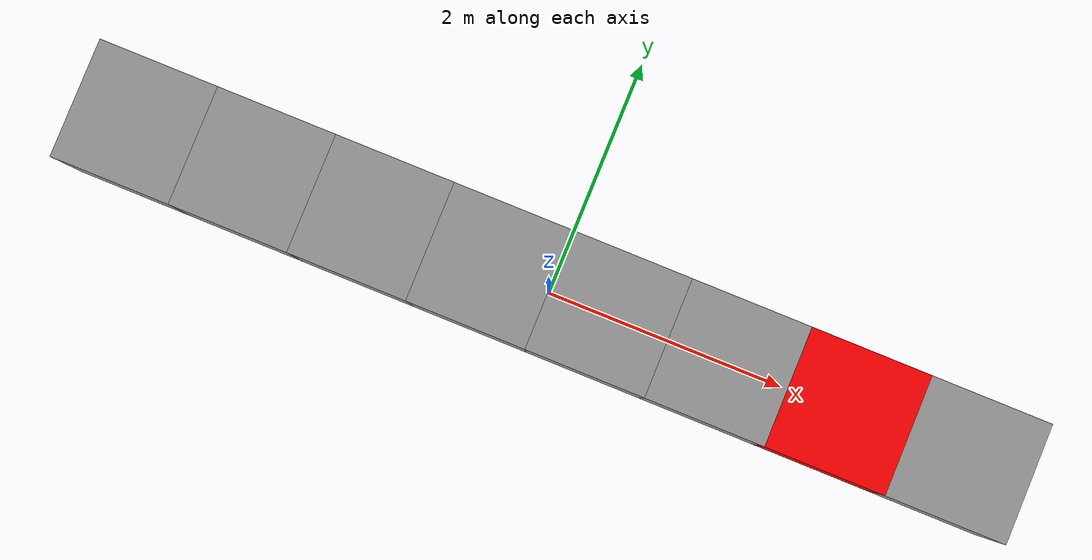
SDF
<?xml version='1.0'?>
<sdf version='1.6'>
  <model name='seiral_blocks_color'>
    <link name='link_10'>
      <pose frame=''>2.5 0 0 0 -0 0</pose>
      <inertial>
        <mass>1</mass>
        <inertia>
          <ixx>0.166667</ixx>
          <ixy>0</ixy>
          <ixz>0</ixz>
          <iyy>0.166667</iyy>
          <iyz>0</iyz>
          <izz>0.166667</izz>
        </inertia>
        <pose frame=''>0 0 0 0 -0 0</pose>
      </inertial>
      <gravity>1</gravity>
      <self_collide>0</self_collide>
      <kinematic>0</kinematic>
      <visual name='visual'>
        <pose frame=''>0 0 0 0 -0 0</pose>
        <geometry>
          <box>
            <size>1 1 1</size>
          </box>
        </geometry>
        <material>
          <lighting>1</lighting>
          <script>
            <uri>file://media/materials/scripts/gazebo.material</uri>
            <name>Gazebo/Grey</name>
          </script>
          <shader type='pixel'>
            <normal_map>__default__</normal_map>
          </shader>
          <ambient>1.0 0.0 0.0 1</ambient>
          <diffuse>1.0 0.0 0.0 1</diffuse>
          <specular>0.1 0.1 0.1 1</specular>
          <emissive>0 0 0 1</emissive>
        </material>
        <transparency>0</transparency>
        <cast_shadows>1</cast_shadows>
      </visual>
      <collision name='collision'>
        <laser_retro>0</laser_retro>
        <max_contacts>10</max_contacts>
        <pose frame=''>0 0 0 0 -0 0</pose>
        <geometry>
          <box>
            <size>1 1 1</size>
          </box>
        </geometry>
        <surface>
          <friction>
            <ode>
              <mu>1</mu>
              <mu2>1</mu2>
              <fdir1>0 0 0</fdir1>
              <slip1>0</slip1>
              <slip2>0</slip2>
            </ode>
            <torsional>
              <coefficient>1</coefficient>
              <patch_radius>0</patch_radius>
              <surface_radius>0</surface_radius>
              <use_patch_radius>1</use_patch_radius>
              <ode>
                <slip>0</slip>
              </ode>
            </torsional>
          </friction>
          <bounce>
            <restitution_coefficient>0</restitution_coefficient>
            <threshold>1e+06</threshold>
          </bounce>
          <contact>
            <collide_without_contact>0</collide_without_contact>
            <collide_without_contact_bitmask>1</collide_without_contact_bitmask>
            <collide_bitmask>1</collide_bitmask>
            <ode>
              <soft_cfm>0</soft_cfm>
              <soft_erp>0.2</soft_erp>
              <kp>1e+13</kp>
              <kd>1</kd>
              <max_vel>0.01</max_vel>
              <min_depth>0</min_depth>
            </ode>
            <bullet>
              <split_impulse>1</split_impulse>
              <split_impulse_penetration_threshold>-0.01</split_impulse_penetration_threshold>
              <soft_cfm>0</soft_cfm>
              <soft_erp>0.2</soft_erp>
              <kp>1e+13</kp>
              <kd>1</kd>
            </bullet>
          </contact>
        </surface>
      </collision>
    </link>
    <link name='link_11'>
      <pose frame=''>3.5 0 0 0 -0 0</pose>
      <inertial>
        <mass>1</mass>
        <inertia>
          <ixx>0.166667</ixx>
          <ixy>0</ixy>
          <ixz>0</ixz>
          <iyy>0.166667</iyy>
          <iyz>0</iyz>
          <izz>0.166667</izz>
        </inertia>
        <pose frame=''>0 0 0 0 -0 0</pose>
      </inertial>
      <gravity>1</gravity>
      <self_collide>0</self_collide>
      <kinematic>0</kinematic>
      <visual name='visual'>
        <pose frame=''>0 0 0 0 -0 0</pose>
        <geometry>
          <box>
            <size>1 1 1</size>
          </box>
        </geometry>
        <material>
          <lighting>1</lighting>
          <script>
            <uri>file://media/materials/scripts/gazebo.material</uri>
            <name>Gazebo/Grey</name>
          </script>
          <shader type='pixel'>
            <normal_map>__default__</normal_map>
          </shader>
          <ambient>0.3 0.3 0.3 1</ambient>
          <diffuse>0.7 0.7 0.7 1</diffuse>
          <specular>0.01 0.01 0.01 1</specular>
          <emissive>0 0 0 1</emissive>
        </material>
        <transparency>0</transparency>
        <cast_shadows>1</cast_shadows>
      </visual>
      <collision name='collision'>
        <laser_retro>0</laser_retro>
        <max_contacts>10</max_contacts>
        <pose frame=''>0 0 0 0 -0 0</pose>
        <geometry>
          <box>
            <size>1 1 1</size>
          </box>
        </geometry>
        <surface>
          <friction>
            <ode>
              <mu>1</mu>
              <mu2>1</mu2>
              <fdir1>0 0 0</fdir1>
              <slip1>0</slip1>
              <slip2>0</slip2>
            </ode>
            <torsional>
              <coefficient>1</coefficient>
              <patch_radius>0</patch_radius>
              <surface_radius>0</surface_radius>
              <use_patch_radius>1</use_patch_radius>
              <ode>
                <slip>0</slip>
              </ode>
            </torsional>
          </friction>
          <bounce>
            <restitution_coefficient>0</restitution_coefficient>
            <threshold>1e+06</threshold>
          </bounce>
          <contact>
            <collide_without_contact>0</collide_without_contact>
            <collide_without_contact_bitmask>1</collide_without_contact_bitmask>
            <collide_bitmask>1</collide_bitmask>
            <ode>
              <soft_cfm>0</soft_cfm>
              <soft_erp>0.2</soft_erp>
              <kp>1e+13</kp>
              <kd>1</kd>
              <max_vel>0.01</max_vel>
              <min_depth>0</min_depth>
            </ode>
            <bullet>
              <split_impulse>1</split_impulse>
              <split_impulse_penetration_threshold>-0.01</split_impulse_penetration_threshold>
              <soft_cfm>0</soft_cfm>
              <soft_erp>0.2</soft_erp>
              <kp>1e+13</kp>
              <kd>1</kd>
            </bullet>
          </contact>
        </surface>
      </collision>
    </link>
    <link name='link_15'>
      <pose frame=''>-2.5 0 0 0 -0 0</pose>
      <inertial>
        <mass>1</mass>
        <inertia>
          <ixx>0.166667</ixx>
          <ixy>0</ixy>
          <ixz>0</ixz>
          <iyy>0.166667</iyy>
          <iyz>0</iyz>
          <izz>0.166667</izz>
        </inertia>
        <pose frame=''>0 0 0 0 -0 0</pose>
      </inertial>
      <gravity>1</gravity>
      <self_collide>0</self_collide>
      <kinematic>0</kinematic>
      <visual name='visual'>
        <pose frame=''>0 0 0 0 -0 0</pose>
        <geometry>
          <box>
            <size>1 1 1</size>
          </box>
        </geometry>
        <material>
          <lighting>1</lighting>
          <script>
            <uri>file://media/materials/scripts/gazebo.material</uri>
            <name>Gazebo/Grey</name>
          </script>
          <shader type='pixel'>
            <normal_map>__default__</normal_map>
          </shader>
          <ambient>0.3 0.3 0.3 1</ambient>
          <diffuse>0.7 0.7 0.7 1</diffuse>
          <specular>0.01 0.01 0.01 1</specular>
          <emissive>0 0 0 1</emissive>
        </material>
        <transparency>0</transparency>
        <cast_shadows>1</cast_shadows>
      </visual>
      <collision name='collision'>
        <laser_retro>0</laser_retro>
        <max_contacts>10</max_contacts>
        <pose frame=''>0 0 0 0 -0 0</pose>
        <geometry>
          <box>
            <size>1 1 1</size>
          </box>
        </geometry>
        <surface>
          <friction>
            <ode>
              <mu>1</mu>
              <mu2>1</mu2>
              <fdir1>0 0 0</fdir1>
              <slip1>0</slip1>
              <slip2>0</slip2>
            </ode>
            <torsional>
              <coefficient>1</coefficient>
              <patch_radius>0</patch_radius>
              <surface_radius>0</surface_radius>
              <use_patch_radius>1</use_patch_radius>
              <ode>
                <slip>0</slip>
              </ode>
            </torsional>
          </friction>
          <bounce>
            <restitution_coefficient>0</restitution_coefficient>
            <threshold>1e+06</threshold>
          </bounce>
          <contact>
            <collide_without_contact>0</collide_without_contact>
            <collide_without_contact_bitmask>1</collide_without_contact_bitmask>
            <collide_bitmask>1</collide_bitmask>
            <ode>
              <soft_cfm>0</soft_cfm>
              <soft_erp>0.2</soft_erp>
              <kp>1e+13</kp>
              <kd>1</kd>
              <max_vel>0.01</max_vel>
              <min_depth>0</min_depth>
            </ode>
            <bullet>
              <split_impulse>1</split_impulse>
              <split_impulse_penetration_threshold>-0.01</split_impulse_penetration_threshold>
              <soft_cfm>0</soft_cfm>
              <soft_erp>0.2</soft_erp>
              <kp>1e+13</kp>
              <kd>1</kd>
            </bullet>
          </contact>
        </surface>
      </collision>
    </link>
    <link name='link_16'>
      <pose frame=''>-0.5 0 0 0 -0 0</pose>
      <inertial>
        <mass>1</mass>
        <inertia>
          <ixx>0.166667</ixx>
          <ixy>0</ixy>
          <ixz>0</ixz>
          <iyy>0.166667</iyy>
          <iyz>0</iyz>
          <izz>0.166667</izz>
        </inertia>
        <pose frame=''>0 0 0 0 -0 0</pose>
      </inertial>
      <gravity>1</gravity>
      <self_collide>0</self_collide>
      <kinematic>0</kinematic>
      <visual name='visual'>
        <pose frame=''>0 0 0 0 -0 0</pose>
        <geometry>
          <box>
            <size>1 1 1</size>
          </box>
        </geometry>
        <material>
          <lighting>1</lighting>
          <script>
            <uri>file://media/materials/scripts/gazebo.material</uri>
            <name>Gazebo/Grey</name>
          </script>
          <shader type='pixel'>
            <normal_map>__default__</normal_map>
          </shader>
          <ambient>0.3 0.3 0.3 1</ambient>
          <diffuse>0.7 0.7 0.7 1</diffuse>
          <specular>0.01 0.01 0.01 1</specular>
          <emissive>0 0 0 1</emissive>
        </material>
        <transparency>0</transparency>
        <cast_shadows>1</cast_shadows>
      </visual>
      <collision name='collision'>
        <laser_retro>0</laser_retro>
        <max_contacts>10</max_contacts>
        <pose frame=''>0 0 0 0 -0 0</pose>
        <geometry>
          <box>
            <size>1 1 1</size>
          </box>
        </geometry>
        <surface>
          <friction>
            <ode>
              <mu>1</mu>
              <mu2>1</mu2>
              <fdir1>0 0 0</fdir1>
              <slip1>0</slip1>
              <slip2>0</slip2>
            </ode>
            <torsional>
              <coefficient>1</coefficient>
              <patch_radius>0</patch_radius>
              <surface_radius>0</surface_radius>
              <use_patch_radius>1</use_patch_radius>
              <ode>
                <slip>0</slip>
              </ode>
            </torsional>
          </friction>
          <bounce>
            <restitution_coefficient>0</restitution_coefficient>
            <threshold>1e+06</threshold>
          </bounce>
          <contact>
            <collide_without_contact>0</collide_without_contact>
            <collide_without_contact_bitmask>1</collide_without_contact_bitmask>
            <collide_bitmask>1</collide_bitmask>
            <ode>
              <soft_cfm>0</soft_cfm>
              <soft_erp>0.2</soft_erp>
              <kp>1e+13</kp>
              <kd>1</kd>
              <max_vel>0.01</max_vel>
              <min_depth>0</min_depth>
            </ode>
            <bullet>
              <split_impulse>1</split_impulse>
              <split_impulse_penetration_threshold>-0.01</split_impulse_penetration_threshold>
              <soft_cfm>0</soft_cfm>
              <soft_erp>0.2</soft_erp>
              <kp>1e+13</kp>
              <kd>1</kd>
            </bullet>
          </contact>
        </surface>
      </collision>
    </link>
    <link name='link_6'>
      <pose frame=''>-1.5 0 0 0 -0 0</pose>
      <inertial>
        <mass>1</mass>
        <inertia>
          <ixx>0.166667</ixx>
          <ixy>0</ixy>
          <ixz>0</ixz>
          <iyy>0.166667</iyy>
          <iyz>0</iyz>
          <izz>0.166667</izz>
        </inertia>
        <pose frame=''>0 0 0 0 -0 0</pose>
      </inertial>
      <gravity>1</gravity>
      <self_collide>0</self_collide>
      <kinematic>0</kinematic>
      <visual name='visual'>
        <pose frame=''>0 0 0 0 -0 0</pose>
        <geometry>
          <box>
            <size>1 1 1</size>
          </box>
        </geometry>
        <material>
          <lighting>1</lighting>
          <script>
            <uri>file://media/materials/scripts/gazebo.material</uri>
            <name>Gazebo/Grey</name>
          </script>
          <shader type='pixel'>
            <normal_map>__default__</normal_map>
          </shader>
          <ambient>0.3 0.3 0.3 1</ambient>
          <diffuse>0.7 0.7 0.7 1</diffuse>
          <specular>0.01 0.01 0.01 1</specular>
          <emissive>0 0 0 1</emissive>
        </material>
        <transparency>0</transparency>
        <cast_shadows>1</cast_shadows>
      </visual>
      <collision name='collision'>
        <laser_retro>0</laser_retro>
        <max_contacts>10</max_contacts>
        <pose frame=''>0 0 0 0 -0 0</pose>
        <geometry>
          <box>
            <size>1 1 1</size>
          </box>
        </geometry>
        <surface>
          <friction>
            <ode>
              <mu>1</mu>
              <mu2>1</mu2>
              <fdir1>0 0 0</fdir1>
              <slip1>0</slip1>
              <slip2>0</slip2>
            </ode>
            <torsional>
              <coefficient>1</coefficient>
              <patch_radius>0</patch_radius>
              <surface_radius>0</surface_radius>
              <use_patch_radius>1</use_patch_radius>
              <ode>
                <slip>0</slip>
              </ode>
            </torsional>
          </friction>
          <bounce>
            <restitution_coefficient>0</restitution_coefficient>
            <threshold>1e+06</threshold>
          </bounce>
          <contact>
            <collide_without_contact>0</collide_without_contact>
            <collide_without_contact_bitmask>1</collide_without_contact_bitmask>
            <collide_bitmask>1</collide_bitmask>
            <ode>
              <soft_cfm>0</soft_cfm>
              <soft_erp>0.2</soft_erp>
              <kp>1e+13</kp>
              <kd>1</kd>
              <max_vel>0.01</max_vel>
              <min_depth>0</min_depth>
            </ode>
            <bullet>
              <split_impulse>1</split_impulse>
              <split_impulse_penetration_threshold>-0.01</split_impulse_penetration_threshold>
              <soft_cfm>0</soft_cfm>
              <soft_erp>0.2</soft_erp>
              <kp>1e+13</kp>
              <kd>1</kd>
            </bullet>
          </contact>
        </surface>
      </collision>
    </link>
    <link name='link_7'>
      <pose frame=''>-3.5 0 0 0 -0 0</pose>
      <inertial>
        <mass>1</mass>
        <inertia>
          <ixx>0.166667</ixx>
          <ixy>0</ixy>
          <ixz>0</ixz>
          <iyy>0.166667</iyy>
          <iyz>0</iyz>
          <izz>0.166667</izz>
        </inertia>
        <pose frame=''>0 0 0 0 -0 0</pose>
      </inertial>
      <gravity>1</gravity>
      <self_collide>0</self_collide>
      <kinematic>0</kinematic>
      <visual name='visual'>
        <pose frame=''>0 0 0 0 -0 0</pose>
        <geometry>
          <box>
            <size>1 1 1</size>
          </box>
        </geometry>
        <material>
          <lighting>1</lighting>
          <script>
            <uri>file://media/materials/scripts/gazebo.material</uri>
            <name>Gazebo/Grey</name>
          </script>
          <shader type='pixel'>
            <normal_map>__default__</normal_map>
          </shader>
          <ambient>0.3 0.3 0.3 1</ambient>
          <diffuse>0.7 0.7 0.7 1</diffuse>
          <specular>0.01 0.01 0.01 1</specular>
          <emissive>0 0 0 1</emissive>
        </material>
        <transparency>0</transparency>
        <cast_shadows>1</cast_shadows>
      </visual>
      <collision name='collision'>
        <laser_retro>0</laser_retro>
        <max_contacts>10</max_contacts>
        <pose frame=''>0 0 0 0 -0 0</pose>
        <geometry>
          <box>
            <size>1 1 1</size>
          </box>
        </geometry>
        <surface>
          <friction>
            <ode>
              <mu>1</mu>
              <mu2>1</mu2>
              <fdir1>0 0 0</fdir1>
              <slip1>0</slip1>
              <slip2>0</slip2>
            </ode>
            <torsional>
              <coefficient>1</coefficient>
              <patch_radius>0</patch_radius>
              <surface_radius>0</surface_radius>
              <use_patch_radius>1</use_patch_radius>
              <ode>
                <slip>0</slip>
              </ode>
            </torsional>
          </friction>
          <bounce>
            <restitution_coefficient>0</restitution_coefficient>
            <threshold>1e+06</threshold>
          </bounce>
          <contact>
            <collide_without_contact>0</collide_without_contact>
            <collide_without_contact_bitmask>1</collide_without_contact_bitmask>
            <collide_bitmask>1</collide_bitmask>
            <ode>
              <soft_cfm>0</soft_cfm>
              <soft_erp>0.2</soft_erp>
              <kp>1e+13</kp>
              <kd>1</kd>
              <max_vel>0.01</max_vel>
              <min_depth>0</min_depth>
            </ode>
            <bullet>
              <split_impulse>1</split_impulse>
              <split_impulse_penetration_threshold>-0.01</split_impulse_penetration_threshold>
              <soft_cfm>0</soft_cfm>
              <soft_erp>0.2</soft_erp>
              <kp>1e+13</kp>
              <kd>1</kd>
            </bullet>
          </contact>
        </surface>
      </collision>
    </link>
    <link name='link_8'>
      <pose frame=''>0.5 0 0 0 -0 0</pose>
      <inertial>
        <mass>1</mass>
        <inertia>
          <ixx>0.166667</ixx>
          <ixy>0</ixy>
          <ixz>0</ixz>
          <iyy>0.166667</iyy>
          <iyz>0</iyz>
          <izz>0.166667</izz>
        </inertia>
        <pose frame=''>0 0 0 0 -0 0</pose>
      </inertial>
      <gravity>1</gravity>
      <self_collide>0</self_collide>
      <kinematic>0</kinematic>
      <visual name='visual'>
        <pose frame=''>0 0 0 0 -0 0</pose>
        <geometry>
          <box>
            <size>1 1 1</size>
          </box>
        </geometry>
        <material>
          <lighting>1</lighting>
          <script>
            <uri>file://media/materials/scripts/gazebo.material</uri>
            <name>Gazebo/Grey</name>
          </script>
          <shader type='pixel'>
            <normal_map>__default__</normal_map>
          </shader>
          <ambient>0.3 0.3 0.3 1</ambient>
          <diffuse>0.7 0.7 0.7 1</diffuse>
          <specular>0.01 0.01 0.01 1</specular>
          <emissive>0 0 0 1</emissive>
        </material>
        <transparency>0</transparency>
        <cast_shadows>1</cast_shadows>
      </visual>
      <collision name='collision'>
        <laser_retro>0</laser_retro>
        <max_contacts>10</max_contacts>
        <pose frame=''>0 0 0 0 -0 0</pose>
        <geometry>
          <box>
            <size>1 1 1</size>
          </box>
        </geometry>
        <surface>
          <friction>
            <ode>
              <mu>1</mu>
              <mu2>1</mu2>
              <fdir1>0 0 0</fdir1>
              <slip1>0</slip1>
              <slip2>0</slip2>
            </ode>
            <torsional>
              <coefficient>1</coefficient>
              <patch_radius>0</patch_radius>
              <surface_radius>0</surface_radius>
              <use_patch_radius>1</use_patch_radius>
              <ode>
                <slip>0</slip>
              </ode>
            </torsional>
          </friction>
          <bounce>
            <restitution_coefficient>0</restitution_coefficient>
            <threshold>1e+06</threshold>
          </bounce>
          <contact>
            <collide_without_contact>0</collide_without_contact>
            <collide_without_contact_bitmask>1</collide_without_contact_bitmask>
            <collide_bitmask>1</collide_bitmask>
            <ode>
              <soft_cfm>0</soft_cfm>
              <soft_erp>0.2</soft_erp>
              <kp>1e+13</kp>
              <kd>1</kd>
              <max_vel>0.01</max_vel>
              <min_depth>0</min_depth>
            </ode>
            <bullet>
              <split_impulse>1</split_impulse>
              <split_impulse_penetration_threshold>-0.01</split_impulse_penetration_threshold>
              <soft_cfm>0</soft_cfm>
              <soft_erp>0.2</soft_erp>
              <kp>1e+13</kp>
              <kd>1</kd>
            </bullet>
          </contact>
        </surface>
      </collision>
    </link>
    <link name='link_9'>
      <pose frame=''>1.5 0 0 0 -0 0</pose>
      <inertial>
        <mass>1</mass>
        <inertia>
          <ixx>0.166667</ixx>
          <ixy>0</ixy>
          <ixz>0</ixz>
          <iyy>0.166667</iyy>
          <iyz>0</iyz>
          <izz>0.166667</izz>
        </inertia>
        <pose frame=''>0 0 0 0 -0 0</pose>
      </inertial>
      <gravity>1</gravity>
      <self_collide>0</self_collide>
      <kinematic>0</kinematic>
      <visual name='visual'>
        <pose frame=''>0 0 0 0 -0 0</pose>
        <geometry>
          <box>
            <size>1 1 1</size>
          </box>
        </geometry>
        <material>
          <lighting>1</lighting>
          <script>
            <uri>file://media/materials/scripts/gazebo.material</uri>
            <name>Gazebo/Grey</name>
          </script>
          <shader type='pixel'>
            <normal_map>__default__</normal_map>
          </shader>
          <ambient>0.3 0.3 0.3 1</ambient>
          <diffuse>0.7 0.7 0.7 1</diffuse>
          <specular>0.01 0.01 0.01 1</specular>
          <emissive>0 0 0 1</emissive>
        </material>
        <transparency>0</transparency>
        <cast_shadows>1</cast_shadows>
      </visual>
      <collision name='collision'>
        <laser_retro>0</laser_retro>
        <max_contacts>10</max_contacts>
        <pose frame=''>0 0 0 0 -0 0</pose>
        <geometry>
          <box>
            <size>1 1 1</size>
          </box>
        </geometry>
        <surface>
          <friction>
            <ode>
              <mu>1</mu>
              <mu2>1</mu2>
              <fdir1>0 0 0</fdir1>
              <slip1>0</slip1>
              <slip2>0</slip2>
            </ode>
            <torsional>
              <coefficient>1</coefficient>
              <patch_radius>0</patch_radius>
              <surface_radius>0</surface_radius>
              <use_patch_radius>1</use_patch_radius>
              <ode>
                <slip>0</slip>
              </ode>
            </torsional>
          </friction>
          <bounce>
            <restitution_coefficient>0</restitution_coefficient>
            <threshold>1e+06</threshold>
          </bounce>
          <contact>
            <collide_without_contact>0</collide_without_contact>
            <collide_without_contact_bitmask>1</collide_without_contact_bitmask>
            <collide_bitmask>1</collide_bitmask>
            <ode>
              <soft_cfm>0</soft_cfm>
              <soft_erp>0.2</soft_erp>
              <kp>1e+13</kp>
              <kd>1</kd>
              <max_vel>0.01</max_vel>
              <min_depth>0</min_depth>
            </ode>
            <bullet>
              <split_impulse>1</split_impulse>
              <split_impulse_penetration_threshold>-0.01</split_impulse_penetration_threshold>
              <soft_cfm>0</soft_cfm>
              <soft_erp>0.2</soft_erp>
              <kp>1e+13</kp>
              <kd>1</kd>
            </bullet>
          </contact>
        </surface>
      </collision>
    </link>
    <joint name='link_10_JOINT_10' type='fixed'>
      <parent>link_10</parent>
      <child>link_11</child>
      <pose frame=''>0 0 0 0 -0 0</pose>
      <physics>
        <ode>
          <limit>
            <cfm>0</cfm>
            <erp>0.2</erp>
          </limit>
          <suspension>
            <cfm>0</cfm>
            <erp>0.2</erp>
          </suspension>
        </ode>
      </physics>
    </joint>
    <joint name='link_15_JOINT_5' type='fixed'>
      <parent>link_15</parent>
      <child>link_6</child>
      <pose frame=''>0 0 0 0 -0 0</pose>
      <physics>
        <ode>
          <limit>
            <cfm>0</cfm>
            <erp>0.2</erp>
          </limit>
          <suspension>
            <cfm>0</cfm>
            <erp>0.2</erp>
          </suspension>
        </ode>
      </physics>
    </joint>
    <joint name='link_16_JOINT_7' type='fixed'>
      <parent>link_16</parent>
      <child>link_8</child>
      <pose frame=''>0 0 0 0 -0 0</pose>
      <physics>
        <ode>
          <limit>
            <cfm>0</cfm>
            <erp>0.2</erp>
          </limit>
          <suspension>
            <cfm>0</cfm>
            <erp>0.2</erp>
          </suspension>
        </ode>
      </physics>
    </joint>
    <joint name='link_6_JOINT_6' type='fixed'>
      <parent>link_6</parent>
      <child>link_16</child>
      <pose frame=''>0 0 0 0 -0 0</pose>
      <physics>
        <ode>
          <limit>
            <cfm>0</cfm>
            <erp>0.2</erp>
          </limit>
          <suspension>
            <cfm>0</cfm>
            <erp>0.2</erp>
          </suspension>
        </ode>
      </physics>
    </joint>
    <joint name='link_7_JOINT_4' type='fixed'>
      <parent>link_7</parent>
      <child>link_15</child>
      <pose frame=''>0 0 0 0 -0 0</pose>
      <physics>
        <ode>
          <limit>
            <cfm>0</cfm>
            <erp>0.2</erp>
          </limit>
          <suspension>
            <cfm>0</cfm>
            <erp>0.2</erp>
          </suspension>
        </ode>
      </physics>
    </joint>
    <joint name='link_8_JOINT_8' type='fixed'>
      <parent>link_8</parent>
      <child>link_9</child>
      <pose frame=''>0 0 0 0 -0 0</pose>
      <physics>
        <ode>
          <limit>
            <cfm>0</cfm>
            <erp>0.2</erp>
          </limit>
          <suspension>
            <cfm>0</cfm>
            <erp>0.2</erp>
          </suspension>
        </ode>
      </physics>
    </joint>
    <joint name='link_9_JOINT_9' type='fixed'>
      <parent>link_9</parent>
      <child>link_10</child>
      <pose frame=''>0 0 0 0 -0 0</pose>
      <physics>
        <ode>
          <limit>
            <cfm>0</cfm>
            <erp>0.2</erp>
          </limit>
          <suspension>
            <cfm>0</cfm>
            <erp>0.2</erp>
          </suspension>
        </ode>
      </physics>
    </joint>
    <static>0</static>
    <allow_auto_disable>1</allow_auto_disable>
  </model>
</sdf>
